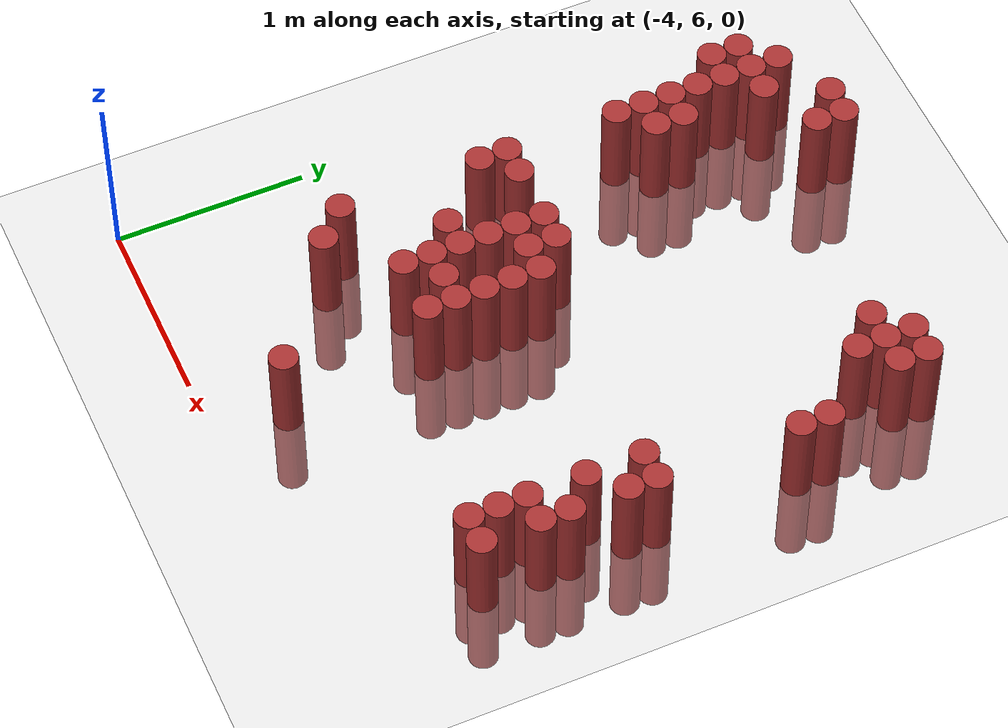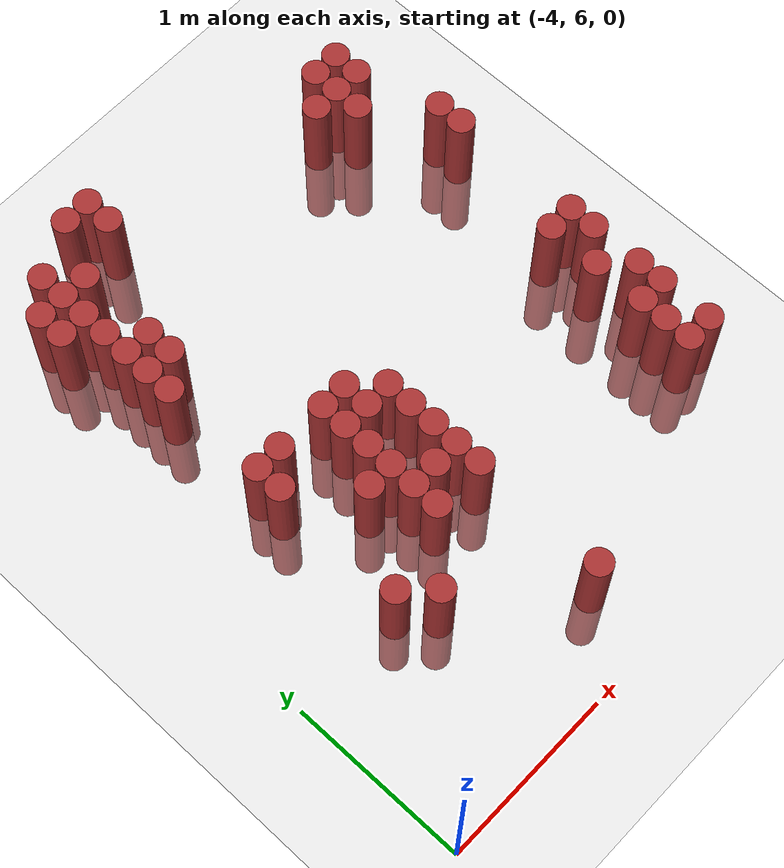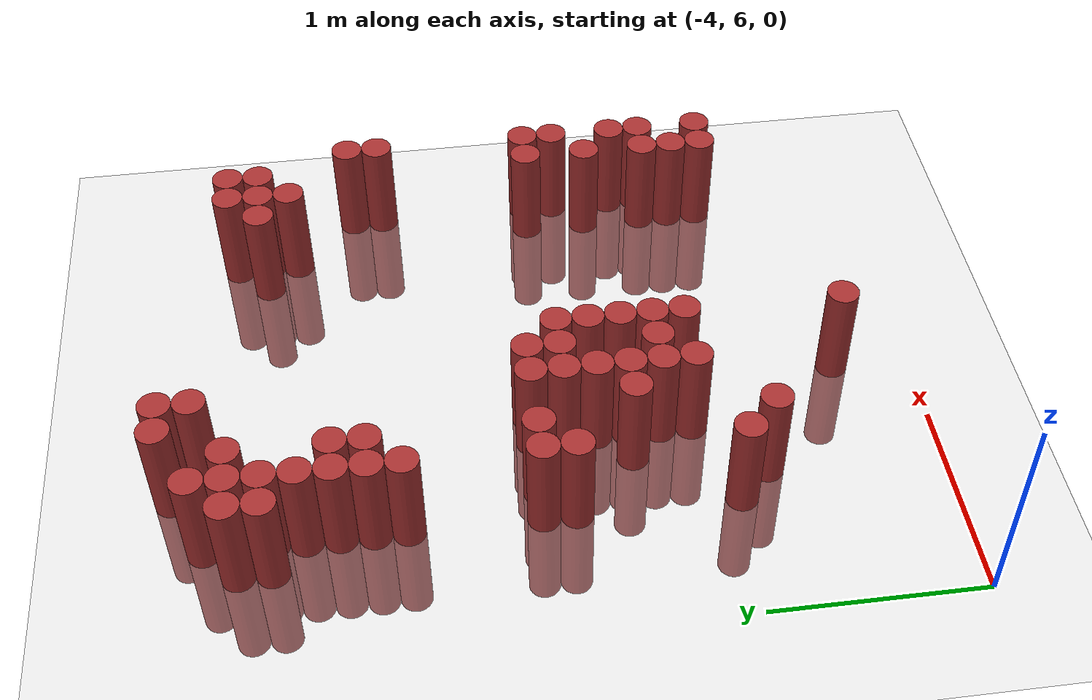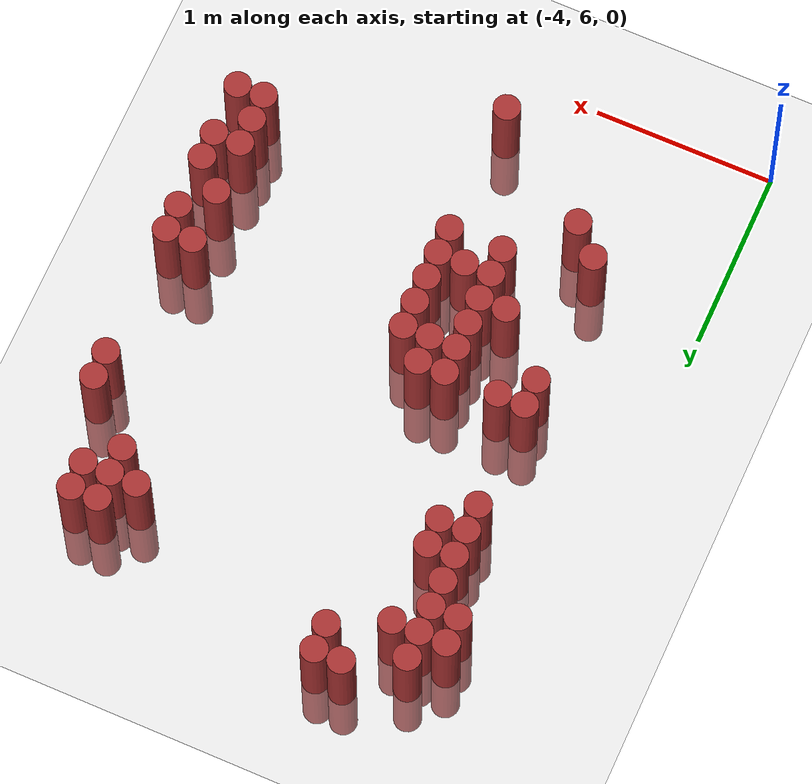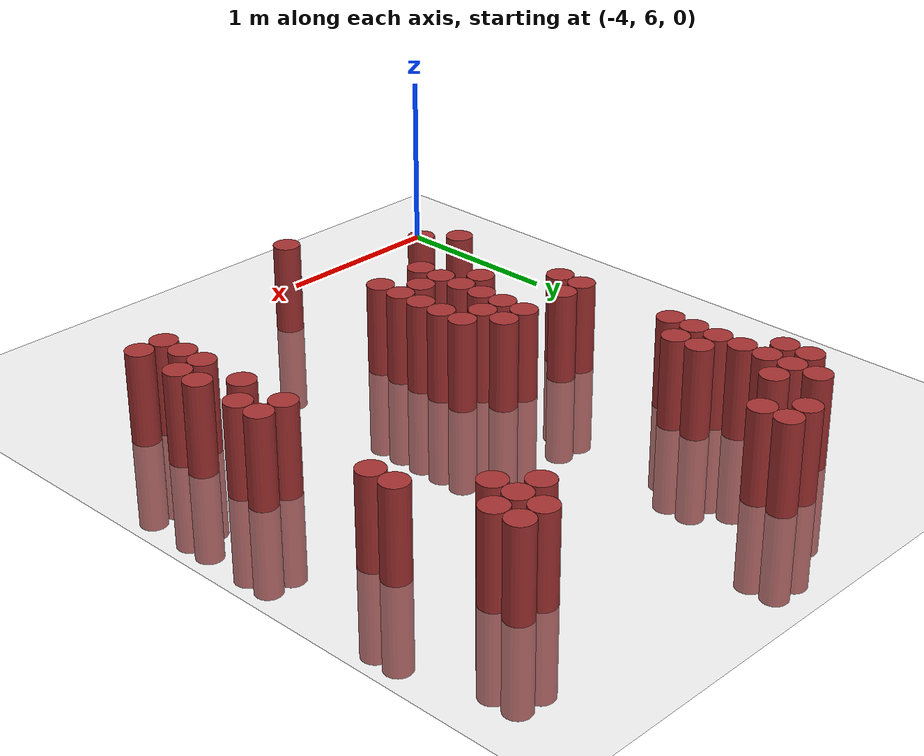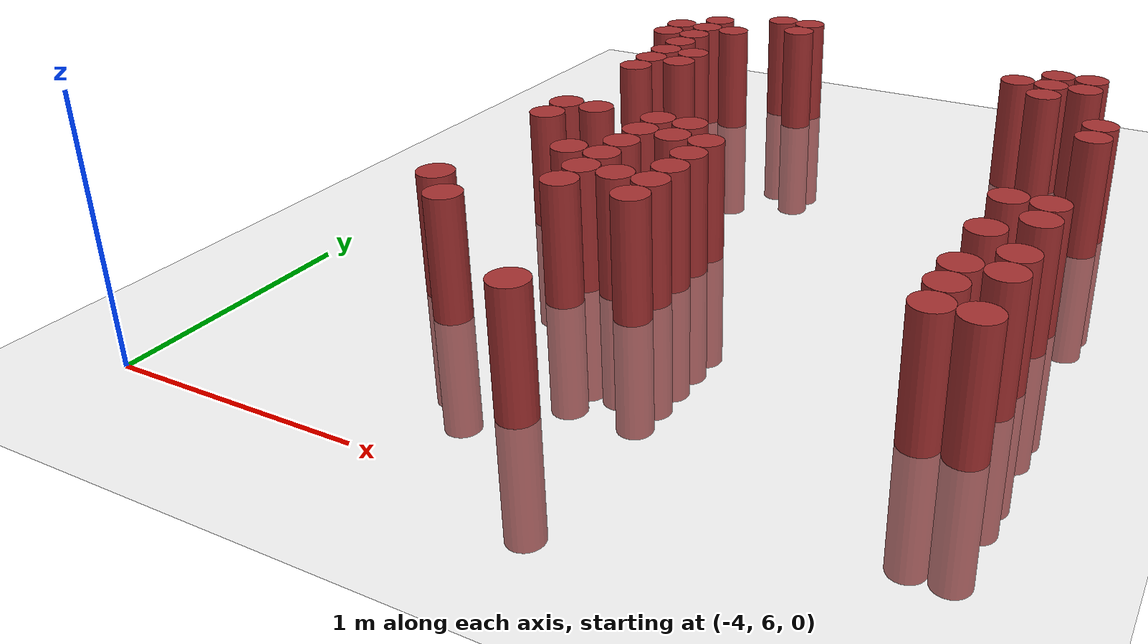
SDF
<sdf version="1.6">
 <world name="default">
  <model name="ground_plane">
   <static>1</static>
   <link name="link">
    <collision name="collision">
     <geometry><plane><normal>0 0 1</normal><size>100 100</size></plane></geometry>
     <surface><friction><ode><mu>100</mu><mu2>50</mu2></ode></friction></surface>
    </collision>
    <visual name="visual">
     <cast_shadows>0</cast_shadows>
     <geometry><plane><normal>0 0 1</normal><size>100 100</size></plane></geometry>
     <material>
      <script><uri>file://media/materials/scripts/gazebo.material</uri><name>Gazebo/Grey</name></script>
     </material>
    </visual>
   </link>
  </model>
  <model name="unit_cylinder_170">
   <static>1</static>
   <pose>-3.525000 9.075000 0.000000 0.000000 0.000000 0.000000</pose>
   <link name="link">
    <inertial>
     <mass>1</mass>
     <inertia><ixx>0.145833</ixx><ixy>0</ixy><ixz>0</ixz><iyy>0.145833</iyy><iyz>0</iyz><izz>0.125</izz></inertia>
    </inertial>
    <collision name="collision">
     <geometry><cylinder><radius>0.075000</radius><length>1</length></cylinder></geometry>
    </collision>
    <visual name="visual">
     <geometry><cylinder><radius>0.075000</radius><length>1</length></cylinder></geometry>
     <material>
      <ambient>0.648000 0.192000 0.192000 1</ambient>
      <diffuse>0.648000 0.192000 0.192000 1</diffuse>
     </material>
     <material>
      <script><name>Gazebo/Grey</name><uri>file://media/materials/scripts/gazebo.material</uri></script>
     </material>
    </visual>
   </link>
  </model>
  <model name="unit_cylinder_171">
   <static>1</static>
   <pose>-3.525000 9.225000 0.000000 0.000000 0.000000 0.000000</pose>
   <link name="link">
    <inertial>
     <mass>1</mass>
     <inertia><ixx>0.145833</ixx><ixy>0</ixy><ixz>0</ixz><iyy>0.145833</iyy><iyz>0</iyz><izz>0.125</izz></inertia>
    </inertial>
    <collision name="collision">
     <geometry><cylinder><radius>0.075000</radius><length>1</length></cylinder></geometry>
    </collision>
    <visual name="visual">
     <geometry><cylinder><radius>0.075000</radius><length>1</length></cylinder></geometry>
     <material>
      <ambient>0.648000 0.192000 0.192000 1</ambient>
      <diffuse>0.648000 0.192000 0.192000 1</diffuse>
     </material>
     <material>
      <script><name>Gazebo/Grey</name><uri>file://media/materials/scripts/gazebo.material</uri></script>
     </material>
    </visual>
   </link>
  </model>
  <model name="unit_cylinder_179">
   <static>1</static>
   <pose>-3.375000 6.975000 0.000000 0.000000 0.000000 0.000000</pose>
   <link name="link">
    <inertial>
     <mass>1</mass>
     <inertia><ixx>0.145833</ixx><ixy>0</ixy><ixz>0</ixz><iyy>0.145833</iyy><iyz>0</iyz><izz>0.125</izz></inertia>
    </inertial>
    <collision name="collision">
     <geometry><cylinder><radius>0.075000</radius><length>1</length></cylinder></geometry>
    </collision>
    <visual name="visual">
     <geometry><cylinder><radius>0.075000</radius><length>1</length></cylinder></geometry>
     <material>
      <ambient>0.648000 0.192000 0.192000 1</ambient>
      <diffuse>0.648000 0.192000 0.192000 1</diffuse>
     </material>
     <material>
      <script><name>Gazebo/Grey</name><uri>file://media/materials/scripts/gazebo.material</uri></script>
     </material>
    </visual>
   </link>
  </model>
  <model name="unit_cylinder_180">
   <static>1</static>
   <pose>-3.375000 7.725000 0.000000 0.000000 0.000000 0.000000</pose>
   <link name="link">
    <inertial>
     <mass>1</mass>
     <inertia><ixx>0.145833</ixx><ixy>0</ixy><ixz>0</ixz><iyy>0.145833</iyy><iyz>0</iyz><izz>0.125</izz></inertia>
    </inertial>
    <collision name="collision">
     <geometry><cylinder><radius>0.075000</radius><length>1</length></cylinder></geometry>
    </collision>
    <visual name="visual">
     <geometry><cylinder><radius>0.075000</radius><length>1</length></cylinder></geometry>
     <material>
      <ambient>0.648000 0.192000 0.192000 1</ambient>
      <diffuse>0.648000 0.192000 0.192000 1</diffuse>
     </material>
     <material>
      <script><name>Gazebo/Grey</name><uri>file://media/materials/scripts/gazebo.material</uri></script>
     </material>
    </visual>
   </link>
  </model>
  <model name="unit_cylinder_181">
   <static>1</static>
   <pose>-3.375000 7.875000 0.000000 0.000000 0.000000 0.000000</pose>
   <link name="link">
    <inertial>
     <mass>1</mass>
     <inertia><ixx>0.145833</ixx><ixy>0</ixy><ixz>0</ixz><iyy>0.145833</iyy><iyz>0</iyz><izz>0.125</izz></inertia>
    </inertial>
    <collision name="collision">
     <geometry><cylinder><radius>0.075000</radius><length>1</length></cylinder></geometry>
    </collision>
    <visual name="visual">
     <geometry><cylinder><radius>0.075000</radius><length>1</length></cylinder></geometry>
     <material>
      <ambient>0.648000 0.192000 0.192000 1</ambient>
      <diffuse>0.648000 0.192000 0.192000 1</diffuse>
     </material>
     <material>
      <script><name>Gazebo/Grey</name><uri>file://media/materials/scripts/gazebo.material</uri></script>
     </material>
    </visual>
   </link>
  </model>
  <model name="unit_cylinder_182">
   <static>1</static>
   <pose>-3.375000 8.475000 0.000000 0.000000 0.000000 0.000000</pose>
   <link name="link">
    <inertial>
     <mass>1</mass>
     <inertia><ixx>0.145833</ixx><ixy>0</ixy><ixz>0</ixz><iyy>0.145833</iyy><iyz>0</iyz><izz>0.125</izz></inertia>
    </inertial>
    <collision name="collision">
     <geometry><cylinder><radius>0.075000</radius><length>1</length></cylinder></geometry>
    </collision>
    <visual name="visual">
     <geometry><cylinder><radius>0.075000</radius><length>1</length></cylinder></geometry>
     <material>
      <ambient>0.648000 0.192000 0.192000 1</ambient>
      <diffuse>0.648000 0.192000 0.192000 1</diffuse>
     </material>
     <material>
      <script><name>Gazebo/Grey</name><uri>file://media/materials/scripts/gazebo.material</uri></script>
     </material>
    </visual>
   </link>
  </model>
  <model name="unit_cylinder_183">
   <static>1</static>
   <pose>-3.375000 8.625000 0.000000 0.000000 0.000000 0.000000</pose>
   <link name="link">
    <inertial>
     <mass>1</mass>
     <inertia><ixx>0.145833</ixx><ixy>0</ixy><ixz>0</ixz><iyy>0.145833</iyy><iyz>0</iyz><izz>0.125</izz></inertia>
    </inertial>
    <collision name="collision">
     <geometry><cylinder><radius>0.075000</radius><length>1</length></cylinder></geometry>
    </collision>
    <visual name="visual">
     <geometry><cylinder><radius>0.075000</radius><length>1</length></cylinder></geometry>
     <material>
      <ambient>0.648000 0.192000 0.192000 1</ambient>
      <diffuse>0.648000 0.192000 0.192000 1</diffuse>
     </material>
     <material>
      <script><name>Gazebo/Grey</name><uri>file://media/materials/scripts/gazebo.material</uri></script>
     </material>
    </visual>
   </link>
  </model>
  <model name="unit_cylinder_184">
   <static>1</static>
   <pose>-3.375000 8.775000 0.000000 0.000000 0.000000 0.000000</pose>
   <link name="link">
    <inertial>
     <mass>1</mass>
     <inertia><ixx>0.145833</ixx><ixy>0</ixy><ixz>0</ixz><iyy>0.145833</iyy><iyz>0</iyz><izz>0.125</izz></inertia>
    </inertial>
    <collision name="collision">
     <geometry><cylinder><radius>0.075000</radius><length>1</length></cylinder></geometry>
    </collision>
    <visual name="visual">
     <geometry><cylinder><radius>0.075000</radius><length>1</length></cylinder></geometry>
     <material>
      <ambient>0.648000 0.192000 0.192000 1</ambient>
      <diffuse>0.648000 0.192000 0.192000 1</diffuse>
     </material>
     <material>
      <script><name>Gazebo/Grey</name><uri>file://media/materials/scripts/gazebo.material</uri></script>
     </material>
    </visual>
   </link>
  </model>
  <model name="unit_cylinder_185">
   <static>1</static>
   <pose>-3.375000 8.925000 0.000000 0.000000 0.000000 0.000000</pose>
   <link name="link">
    <inertial>
     <mass>1</mass>
     <inertia><ixx>0.145833</ixx><ixy>0</ixy><ixz>0</ixz><iyy>0.145833</iyy><iyz>0</iyz><izz>0.125</izz></inertia>
    </inertial>
    <collision name="collision">
     <geometry><cylinder><radius>0.075000</radius><length>1</length></cylinder></geometry>
    </collision>
    <visual name="visual">
     <geometry><cylinder><radius>0.075000</radius><length>1</length></cylinder></geometry>
     <material>
      <ambient>0.648000 0.192000 0.192000 1</ambient>
      <diffuse>0.648000 0.192000 0.192000 1</diffuse>
     </material>
     <material>
      <script><name>Gazebo/Grey</name><uri>file://media/materials/scripts/gazebo.material</uri></script>
     </material>
    </visual>
   </link>
  </model>
  <model name="unit_cylinder_186">
   <static>1</static>
   <pose>-3.375000 9.075000 0.000000 0.000000 0.000000 0.000000</pose>
   <link name="link">
    <inertial>
     <mass>1</mass>
     <inertia><ixx>0.145833</ixx><ixy>0</ixy><ixz>0</ixz><iyy>0.145833</iyy><iyz>0</iyz><izz>0.125</izz></inertia>
    </inertial>
    <collision name="collision">
     <geometry><cylinder><radius>0.075000</radius><length>1</length></cylinder></geometry>
    </collision>
    <visual name="visual">
     <geometry><cylinder><radius>0.075000</radius><length>1</length></cylinder></geometry>
     <material>
      <ambient>0.648000 0.192000 0.192000 1</ambient>
      <diffuse>0.648000 0.192000 0.192000 1</diffuse>
     </material>
     <material>
      <script><name>Gazebo/Grey</name><uri>file://media/materials/scripts/gazebo.material</uri></script>
     </material>
    </visual>
   </link>
  </model>
  <model name="unit_cylinder_187">
   <static>1</static>
   <pose>-3.375000 9.225000 0.000000 0.000000 0.000000 0.000000</pose>
   <link name="link">
    <inertial>
     <mass>1</mass>
     <inertia><ixx>0.145833</ixx><ixy>0</ixy><ixz>0</ixz><iyy>0.145833</iyy><iyz>0</iyz><izz>0.125</izz></inertia>
    </inertial>
    <collision name="collision">
     <geometry><cylinder><radius>0.075000</radius><length>1</length></cylinder></geometry>
    </collision>
    <visual name="visual">
     <geometry><cylinder><radius>0.075000</radius><length>1</length></cylinder></geometry>
     <material>
      <ambient>0.648000 0.192000 0.192000 1</ambient>
      <diffuse>0.648000 0.192000 0.192000 1</diffuse>
     </material>
     <material>
      <script><name>Gazebo/Grey</name><uri>file://media/materials/scripts/gazebo.material</uri></script>
     </material>
    </visual>
   </link>
  </model>
  <model name="unit_cylinder_188">
   <static>1</static>
   <pose>-3.375000 9.375000 0.000000 0.000000 0.000000 0.000000</pose>
   <link name="link">
    <inertial>
     <mass>1</mass>
     <inertia><ixx>0.145833</ixx><ixy>0</ixy><ixz>0</ixz><iyy>0.145833</iyy><iyz>0</iyz><izz>0.125</izz></inertia>
    </inertial>
    <collision name="collision">
     <geometry><cylinder><radius>0.075000</radius><length>1</length></cylinder></geometry>
    </collision>
    <visual name="visual">
     <geometry><cylinder><radius>0.075000</radius><length>1</length></cylinder></geometry>
     <material>
      <ambient>0.648000 0.192000 0.192000 1</ambient>
      <diffuse>0.648000 0.192000 0.192000 1</diffuse>
     </material>
     <material>
      <script><name>Gazebo/Grey</name><uri>file://media/materials/scripts/gazebo.material</uri></script>
     </material>
    </visual>
   </link>
  </model>
  <model name="unit_cylinder_193">
   <static>1</static>
   <pose>-3.225000 6.825000 0.000000 0.000000 0.000000 0.000000</pose>
   <link name="link">
    <inertial>
     <mass>1</mass>
     <inertia><ixx>0.145833</ixx><ixy>0</ixy><ixz>0</ixz><iyy>0.145833</iyy><iyz>0</iyz><izz>0.125</izz></inertia>
    </inertial>
    <collision name="collision">
     <geometry><cylinder><radius>0.075000</radius><length>1</length></cylinder></geometry>
    </collision>
    <visual name="visual">
     <geometry><cylinder><radius>0.075000</radius><length>1</length></cylinder></geometry>
     <material>
      <ambient>0.648000 0.192000 0.192000 1</ambient>
      <diffuse>0.648000 0.192000 0.192000 1</diffuse>
     </material>
     <material>
      <script><name>Gazebo/Grey</name><uri>file://media/materials/scripts/gazebo.material</uri></script>
     </material>
    </visual>
   </link>
  </model>
  <model name="unit_cylinder_194">
   <static>1</static>
   <pose>-3.225000 7.875000 0.000000 0.000000 0.000000 0.000000</pose>
   <link name="link">
    <inertial>
     <mass>1</mass>
     <inertia><ixx>0.145833</ixx><ixy>0</ixy><ixz>0</ixz><iyy>0.145833</iyy><iyz>0</iyz><izz>0.125</izz></inertia>
    </inertial>
    <collision name="collision">
     <geometry><cylinder><radius>0.075000</radius><length>1</length></cylinder></geometry>
    </collision>
    <visual name="visual">
     <geometry><cylinder><radius>0.075000</radius><length>1</length></cylinder></geometry>
     <material>
      <ambient>0.648000 0.192000 0.192000 1</ambient>
      <diffuse>0.648000 0.192000 0.192000 1</diffuse>
     </material>
     <material>
      <script><name>Gazebo/Grey</name><uri>file://media/materials/scripts/gazebo.material</uri></script>
     </material>
    </visual>
   </link>
  </model>
  <model name="unit_cylinder_195">
   <static>1</static>
   <pose>-3.225000 8.625000 0.000000 0.000000 0.000000 0.000000</pose>
   <link name="link">
    <inertial>
     <mass>1</mass>
     <inertia><ixx>0.145833</ixx><ixy>0</ixy><ixz>0</ixz><iyy>0.145833</iyy><iyz>0</iyz><izz>0.125</izz></inertia>
    </inertial>
    <collision name="collision">
     <geometry><cylinder><radius>0.075000</radius><length>1</length></cylinder></geometry>
    </collision>
    <visual name="visual">
     <geometry><cylinder><radius>0.075000</radius><length>1</length></cylinder></geometry>
     <material>
      <ambient>0.648000 0.192000 0.192000 1</ambient>
      <diffuse>0.648000 0.192000 0.192000 1</diffuse>
     </material>
     <material>
      <script><name>Gazebo/Grey</name><uri>file://media/materials/scripts/gazebo.material</uri></script>
     </material>
    </visual>
   </link>
  </model>
  <model name="unit_cylinder_196">
   <static>1</static>
   <pose>-3.225000 8.775000 0.000000 0.000000 0.000000 0.000000</pose>
   <link name="link">
    <inertial>
     <mass>1</mass>
     <inertia><ixx>0.145833</ixx><ixy>0</ixy><ixz>0</ixz><iyy>0.145833</iyy><iyz>0</iyz><izz>0.125</izz></inertia>
    </inertial>
    <collision name="collision">
     <geometry><cylinder><radius>0.075000</radius><length>1</length></cylinder></geometry>
    </collision>
    <visual name="visual">
     <geometry><cylinder><radius>0.075000</radius><length>1</length></cylinder></geometry>
     <material>
      <ambient>0.648000 0.192000 0.192000 1</ambient>
      <diffuse>0.648000 0.192000 0.192000 1</diffuse>
     </material>
     <material>
      <script><name>Gazebo/Grey</name><uri>file://media/materials/scripts/gazebo.material</uri></script>
     </material>
    </visual>
   </link>
  </model>
  <model name="unit_cylinder_197">
   <static>1</static>
   <pose>-3.225000 9.225000 0.000000 0.000000 0.000000 0.000000</pose>
   <link name="link">
    <inertial>
     <mass>1</mass>
     <inertia><ixx>0.145833</ixx><ixy>0</ixy><ixz>0</ixz><iyy>0.145833</iyy><iyz>0</iyz><izz>0.125</izz></inertia>
    </inertial>
    <collision name="collision">
     <geometry><cylinder><radius>0.075000</radius><length>1</length></cylinder></geometry>
    </collision>
    <visual name="visual">
     <geometry><cylinder><radius>0.075000</radius><length>1</length></cylinder></geometry>
     <material>
      <ambient>0.648000 0.192000 0.192000 1</ambient>
      <diffuse>0.648000 0.192000 0.192000 1</diffuse>
     </material>
     <material>
      <script><name>Gazebo/Grey</name><uri>file://media/materials/scripts/gazebo.material</uri></script>
     </material>
    </visual>
   </link>
  </model>
  <model name="unit_cylinder_203">
   <static>1</static>
   <pose>-3.075000 7.425000 0.000000 0.000000 0.000000 0.000000</pose>
   <link name="link">
    <inertial>
     <mass>1</mass>
     <inertia><ixx>0.145833</ixx><ixy>0</ixy><ixz>0</ixz><iyy>0.145833</iyy><iyz>0</iyz><izz>0.125</izz></inertia>
    </inertial>
    <collision name="collision">
     <geometry><cylinder><radius>0.075000</radius><length>1</length></cylinder></geometry>
    </collision>
    <visual name="visual">
     <geometry><cylinder><radius>0.075000</radius><length>1</length></cylinder></geometry>
     <material>
      <ambient>0.648000 0.192000 0.192000 1</ambient>
      <diffuse>0.648000 0.192000 0.192000 1</diffuse>
     </material>
     <material>
      <script><name>Gazebo/Grey</name><uri>file://media/materials/scripts/gazebo.material</uri></script>
     </material>
    </visual>
   </link>
  </model>
  <model name="unit_cylinder_204">
   <static>1</static>
   <pose>-3.075000 9.525000 0.000000 0.000000 0.000000 0.000000</pose>
   <link name="link">
    <inertial>
     <mass>1</mass>
     <inertia><ixx>0.145833</ixx><ixy>0</ixy><ixz>0</ixz><iyy>0.145833</iyy><iyz>0</iyz><izz>0.125</izz></inertia>
    </inertial>
    <collision name="collision">
     <geometry><cylinder><radius>0.075000</radius><length>1</length></cylinder></geometry>
    </collision>
    <visual name="visual">
     <geometry><cylinder><radius>0.075000</radius><length>1</length></cylinder></geometry>
     <material>
      <ambient>0.648000 0.192000 0.192000 1</ambient>
      <diffuse>0.648000 0.192000 0.192000 1</diffuse>
     </material>
     <material>
      <script><name>Gazebo/Grey</name><uri>file://media/materials/scripts/gazebo.material</uri></script>
     </material>
    </visual>
   </link>
  </model>
  <model name="unit_cylinder_207">
   <static>1</static>
   <pose>-2.925000 7.125000 0.000000 0.000000 0.000000 0.000000</pose>
   <link name="link">
    <inertial>
     <mass>1</mass>
     <inertia><ixx>0.145833</ixx><ixy>0</ixy><ixz>0</ixz><iyy>0.145833</iyy><iyz>0</iyz><izz>0.125</izz></inertia>
    </inertial>
    <collision name="collision">
     <geometry><cylinder><radius>0.075000</radius><length>1</length></cylinder></geometry>
    </collision>
    <visual name="visual">
     <geometry><cylinder><radius>0.075000</radius><length>1</length></cylinder></geometry>
     <material>
      <ambient>0.648000 0.192000 0.192000 1</ambient>
      <diffuse>0.648000 0.192000 0.192000 1</diffuse>
     </material>
     <material>
      <script><name>Gazebo/Grey</name><uri>file://media/materials/scripts/gazebo.material</uri></script>
     </material>
    </visual>
   </link>
  </model>
  <model name="unit_cylinder_208">
   <static>1</static>
   <pose>-2.925000 7.275000 0.000000 0.000000 0.000000 0.000000</pose>
   <link name="link">
    <inertial>
     <mass>1</mass>
     <inertia><ixx>0.145833</ixx><ixy>0</ixy><ixz>0</ixz><iyy>0.145833</iyy><iyz>0</iyz><izz>0.125</izz></inertia>
    </inertial>
    <collision name="collision">
     <geometry><cylinder><radius>0.075000</radius><length>1</length></cylinder></geometry>
    </collision>
    <visual name="visual">
     <geometry><cylinder><radius>0.075000</radius><length>1</length></cylinder></geometry>
     <material>
      <ambient>0.648000 0.192000 0.192000 1</ambient>
      <diffuse>0.648000 0.192000 0.192000 1</diffuse>
     </material>
     <material>
      <script><name>Gazebo/Grey</name><uri>file://media/materials/scripts/gazebo.material</uri></script>
     </material>
    </visual>
   </link>
  </model>
  <model name="unit_cylinder_209">
   <static>1</static>
   <pose>-2.925000 7.425000 0.000000 0.000000 0.000000 0.000000</pose>
   <link name="link">
    <inertial>
     <mass>1</mass>
     <inertia><ixx>0.145833</ixx><ixy>0</ixy><ixz>0</ixz><iyy>0.145833</iyy><iyz>0</iyz><izz>0.125</izz></inertia>
    </inertial>
    <collision name="collision">
     <geometry><cylinder><radius>0.075000</radius><length>1</length></cylinder></geometry>
    </collision>
    <visual name="visual">
     <geometry><cylinder><radius>0.075000</radius><length>1</length></cylinder></geometry>
     <material>
      <ambient>0.648000 0.192000 0.192000 1</ambient>
      <diffuse>0.648000 0.192000 0.192000 1</diffuse>
     </material>
     <material>
      <script><name>Gazebo/Grey</name><uri>file://media/materials/scripts/gazebo.material</uri></script>
     </material>
    </visual>
   </link>
  </model>
  <model name="unit_cylinder_210">
   <static>1</static>
   <pose>-2.925000 7.575000 0.000000 0.000000 0.000000 0.000000</pose>
   <link name="link">
    <inertial>
     <mass>1</mass>
     <inertia><ixx>0.145833</ixx><ixy>0</ixy><ixz>0</ixz><iyy>0.145833</iyy><iyz>0</iyz><izz>0.125</izz></inertia>
    </inertial>
    <collision name="collision">
     <geometry><cylinder><radius>0.075000</radius><length>1</length></cylinder></geometry>
    </collision>
    <visual name="visual">
     <geometry><cylinder><radius>0.075000</radius><length>1</length></cylinder></geometry>
     <material>
      <ambient>0.648000 0.192000 0.192000 1</ambient>
      <diffuse>0.648000 0.192000 0.192000 1</diffuse>
     </material>
     <material>
      <script><name>Gazebo/Grey</name><uri>file://media/materials/scripts/gazebo.material</uri></script>
     </material>
    </visual>
   </link>
  </model>
  <model name="unit_cylinder_211">
   <static>1</static>
   <pose>-2.925000 7.725000 0.000000 0.000000 0.000000 0.000000</pose>
   <link name="link">
    <inertial>
     <mass>1</mass>
     <inertia><ixx>0.145833</ixx><ixy>0</ixy><ixz>0</ixz><iyy>0.145833</iyy><iyz>0</iyz><izz>0.125</izz></inertia>
    </inertial>
    <collision name="collision">
     <geometry><cylinder><radius>0.075000</radius><length>1</length></cylinder></geometry>
    </collision>
    <visual name="visual">
     <geometry><cylinder><radius>0.075000</radius><length>1</length></cylinder></geometry>
     <material>
      <ambient>0.648000 0.192000 0.192000 1</ambient>
      <diffuse>0.648000 0.192000 0.192000 1</diffuse>
     </material>
     <material>
      <script><name>Gazebo/Grey</name><uri>file://media/materials/scripts/gazebo.material</uri></script>
     </material>
    </visual>
   </link>
  </model>
  <model name="unit_cylinder_212">
   <static>1</static>
   <pose>-2.925000 7.875000 0.000000 0.000000 0.000000 0.000000</pose>
   <link name="link">
    <inertial>
     <mass>1</mass>
     <inertia><ixx>0.145833</ixx><ixy>0</ixy><ixz>0</ixz><iyy>0.145833</iyy><iyz>0</iyz><izz>0.125</izz></inertia>
    </inertial>
    <collision name="collision">
     <geometry><cylinder><radius>0.075000</radius><length>1</length></cylinder></geometry>
    </collision>
    <visual name="visual">
     <geometry><cylinder><radius>0.075000</radius><length>1</length></cylinder></geometry>
     <material>
      <ambient>0.648000 0.192000 0.192000 1</ambient>
      <diffuse>0.648000 0.192000 0.192000 1</diffuse>
     </material>
     <material>
      <script><name>Gazebo/Grey</name><uri>file://media/materials/scripts/gazebo.material</uri></script>
     </material>
    </visual>
   </link>
  </model>
  <model name="unit_cylinder_213">
   <static>1</static>
   <pose>-2.925000 9.375000 0.000000 0.000000 0.000000 0.000000</pose>
   <link name="link">
    <inertial>
     <mass>1</mass>
     <inertia><ixx>0.145833</ixx><ixy>0</ixy><ixz>0</ixz><iyy>0.145833</iyy><iyz>0</iyz><izz>0.125</izz></inertia>
    </inertial>
    <collision name="collision">
     <geometry><cylinder><radius>0.075000</radius><length>1</length></cylinder></geometry>
    </collision>
    <visual name="visual">
     <geometry><cylinder><radius>0.075000</radius><length>1</length></cylinder></geometry>
     <material>
      <ambient>0.648000 0.192000 0.192000 1</ambient>
      <diffuse>0.648000 0.192000 0.192000 1</diffuse>
     </material>
     <material>
      <script><name>Gazebo/Grey</name><uri>file://media/materials/scripts/gazebo.material</uri></script>
     </material>
    </visual>
   </link>
  </model>
  <model name="unit_cylinder_214">
   <static>1</static>
   <pose>-2.925000 9.525000 0.000000 0.000000 0.000000 0.000000</pose>
   <link name="link">
    <inertial>
     <mass>1</mass>
     <inertia><ixx>0.145833</ixx><ixy>0</ixy><ixz>0</ixz><iyy>0.145833</iyy><iyz>0</iyz><izz>0.125</izz></inertia>
    </inertial>
    <collision name="collision">
     <geometry><cylinder><radius>0.075000</radius><length>1</length></cylinder></geometry>
    </collision>
    <visual name="visual">
     <geometry><cylinder><radius>0.075000</radius><length>1</length></cylinder></geometry>
     <material>
      <ambient>0.648000 0.192000 0.192000 1</ambient>
      <diffuse>0.648000 0.192000 0.192000 1</diffuse>
     </material>
     <material>
      <script><name>Gazebo/Grey</name><uri>file://media/materials/scripts/gazebo.material</uri></script>
     </material>
    </visual>
   </link>
  </model>
  <model name="unit_cylinder_217">
   <static>1</static>
   <pose>-2.775000 7.275000 0.000000 0.000000 0.000000 0.000000</pose>
   <link name="link">
    <inertial>
     <mass>1</mass>
     <inertia><ixx>0.145833</ixx><ixy>0</ixy><ixz>0</ixz><iyy>0.145833</iyy><iyz>0</iyz><izz>0.125</izz></inertia>
    </inertial>
    <collision name="collision">
     <geometry><cylinder><radius>0.075000</radius><length>1</length></cylinder></geometry>
    </collision>
    <visual name="visual">
     <geometry><cylinder><radius>0.075000</radius><length>1</length></cylinder></geometry>
     <material>
      <ambient>0.648000 0.192000 0.192000 1</ambient>
      <diffuse>0.648000 0.192000 0.192000 1</diffuse>
     </material>
     <material>
      <script><name>Gazebo/Grey</name><uri>file://media/materials/scripts/gazebo.material</uri></script>
     </material>
    </visual>
   </link>
  </model>
  <model name="unit_cylinder_218">
   <static>1</static>
   <pose>-2.775000 7.725000 0.000000 0.000000 0.000000 0.000000</pose>
   <link name="link">
    <inertial>
     <mass>1</mass>
     <inertia><ixx>0.145833</ixx><ixy>0</ixy><ixz>0</ixz><iyy>0.145833</iyy><iyz>0</iyz><izz>0.125</izz></inertia>
    </inertial>
    <collision name="collision">
     <geometry><cylinder><radius>0.075000</radius><length>1</length></cylinder></geometry>
    </collision>
    <visual name="visual">
     <geometry><cylinder><radius>0.075000</radius><length>1</length></cylinder></geometry>
     <material>
      <ambient>0.648000 0.192000 0.192000 1</ambient>
      <diffuse>0.648000 0.192000 0.192000 1</diffuse>
     </material>
     <material>
      <script><name>Gazebo/Grey</name><uri>file://media/materials/scripts/gazebo.material</uri></script>
     </material>
    </visual>
   </link>
  </model>
  <model name="unit_cylinder_219">
   <static>1</static>
   <pose>-2.775000 7.875000 0.000000 0.000000 0.000000 0.000000</pose>
   <link name="link">
    <inertial>
     <mass>1</mass>
     <inertia><ixx>0.145833</ixx><ixy>0</ixy><ixz>0</ixz><iyy>0.145833</iyy><iyz>0</iyz><izz>0.125</izz></inertia>
    </inertial>
    <collision name="collision">
     <geometry><cylinder><radius>0.075000</radius><length>1</length></cylinder></geometry>
    </collision>
    <visual name="visual">
     <geometry><cylinder><radius>0.075000</radius><length>1</length></cylinder></geometry>
     <material>
      <ambient>0.648000 0.192000 0.192000 1</ambient>
      <diffuse>0.648000 0.192000 0.192000 1</diffuse>
     </material>
     <material>
      <script><name>Gazebo/Grey</name><uri>file://media/materials/scripts/gazebo.material</uri></script>
     </material>
    </visual>
   </link>
  </model>
  <model name="unit_cylinder_223">
   <static>1</static>
   <pose>-2.625000 6.375000 0.000000 0.000000 0.000000 0.000000</pose>
   <link name="link">
    <inertial>
     <mass>1</mass>
     <inertia><ixx>0.145833</ixx><ixy>0</ixy><ixz>0</ixz><iyy>0.145833</iyy><iyz>0</iyz><izz>0.125</izz></inertia>
    </inertial>
    <collision name="collision">
     <geometry><cylinder><radius>0.075000</radius><length>1</length></cylinder></geometry>
    </collision>
    <visual name="visual">
     <geometry><cylinder><radius>0.075000</radius><length>1</length></cylinder></geometry>
     <material>
      <ambient>0.648000 0.192000 0.192000 1</ambient>
      <diffuse>0.648000 0.192000 0.192000 1</diffuse>
     </material>
     <material>
      <script><name>Gazebo/Grey</name><uri>file://media/materials/scripts/gazebo.material</uri></script>
     </material>
    </visual>
   </link>
  </model>
  <model name="unit_cylinder_224">
   <static>1</static>
   <pose>-2.625000 7.125000 0.000000 0.000000 0.000000 0.000000</pose>
   <link name="link">
    <inertial>
     <mass>1</mass>
     <inertia><ixx>0.145833</ixx><ixy>0</ixy><ixz>0</ixz><iyy>0.145833</iyy><iyz>0</iyz><izz>0.125</izz></inertia>
    </inertial>
    <collision name="collision">
     <geometry><cylinder><radius>0.075000</radius><length>1</length></cylinder></geometry>
    </collision>
    <visual name="visual">
     <geometry><cylinder><radius>0.075000</radius><length>1</length></cylinder></geometry>
     <material>
      <ambient>0.648000 0.192000 0.192000 1</ambient>
      <diffuse>0.648000 0.192000 0.192000 1</diffuse>
     </material>
     <material>
      <script><name>Gazebo/Grey</name><uri>file://media/materials/scripts/gazebo.material</uri></script>
     </material>
    </visual>
   </link>
  </model>
  <model name="unit_cylinder_225">
   <static>1</static>
   <pose>-2.625000 7.275000 0.000000 0.000000 0.000000 0.000000</pose>
   <link name="link">
    <inertial>
     <mass>1</mass>
     <inertia><ixx>0.145833</ixx><ixy>0</ixy><ixz>0</ixz><iyy>0.145833</iyy><iyz>0</iyz><izz>0.125</izz></inertia>
    </inertial>
    <collision name="collision">
     <geometry><cylinder><radius>0.075000</radius><length>1</length></cylinder></geometry>
    </collision>
    <visual name="visual">
     <geometry><cylinder><radius>0.075000</radius><length>1</length></cylinder></geometry>
     <material>
      <ambient>0.648000 0.192000 0.192000 1</ambient>
      <diffuse>0.648000 0.192000 0.192000 1</diffuse>
     </material>
     <material>
      <script><name>Gazebo/Grey</name><uri>file://media/materials/scripts/gazebo.material</uri></script>
     </material>
    </visual>
   </link>
  </model>
  <model name="unit_cylinder_226">
   <static>1</static>
   <pose>-2.625000 7.425000 0.000000 0.000000 0.000000 0.000000</pose>
   <link name="link">
    <inertial>
     <mass>1</mass>
     <inertia><ixx>0.145833</ixx><ixy>0</ixy><ixz>0</ixz><iyy>0.145833</iyy><iyz>0</iyz><izz>0.125</izz></inertia>
    </inertial>
    <collision name="collision">
     <geometry><cylinder><radius>0.075000</radius><length>1</length></cylinder></geometry>
    </collision>
    <visual name="visual">
     <geometry><cylinder><radius>0.075000</radius><length>1</length></cylinder></geometry>
     <material>
      <ambient>0.648000 0.192000 0.192000 1</ambient>
      <diffuse>0.648000 0.192000 0.192000 1</diffuse>
     </material>
     <material>
      <script><name>Gazebo/Grey</name><uri>file://media/materials/scripts/gazebo.material</uri></script>
     </material>
    </visual>
   </link>
  </model>
  <model name="unit_cylinder_227">
   <static>1</static>
   <pose>-2.625000 7.575000 0.000000 0.000000 0.000000 0.000000</pose>
   <link name="link">
    <inertial>
     <mass>1</mass>
     <inertia><ixx>0.145833</ixx><ixy>0</ixy><ixz>0</ixz><iyy>0.145833</iyy><iyz>0</iyz><izz>0.125</izz></inertia>
    </inertial>
    <collision name="collision">
     <geometry><cylinder><radius>0.075000</radius><length>1</length></cylinder></geometry>
    </collision>
    <visual name="visual">
     <geometry><cylinder><radius>0.075000</radius><length>1</length></cylinder></geometry>
     <material>
      <ambient>0.648000 0.192000 0.192000 1</ambient>
      <diffuse>0.648000 0.192000 0.192000 1</diffuse>
     </material>
     <material>
      <script><name>Gazebo/Grey</name><uri>file://media/materials/scripts/gazebo.material</uri></script>
     </material>
    </visual>
   </link>
  </model>
  <model name="unit_cylinder_228">
   <static>1</static>
   <pose>-2.625000 7.725000 0.000000 0.000000 0.000000 0.000000</pose>
   <link name="link">
    <inertial>
     <mass>1</mass>
     <inertia><ixx>0.145833</ixx><ixy>0</ixy><ixz>0</ixz><iyy>0.145833</iyy><iyz>0</iyz><izz>0.125</izz></inertia>
    </inertial>
    <collision name="collision">
     <geometry><cylinder><radius>0.075000</radius><length>1</length></cylinder></geometry>
    </collision>
    <visual name="visual">
     <geometry><cylinder><radius>0.075000</radius><length>1</length></cylinder></geometry>
     <material>
      <ambient>0.648000 0.192000 0.192000 1</ambient>
      <diffuse>0.648000 0.192000 0.192000 1</diffuse>
     </material>
     <material>
      <script><name>Gazebo/Grey</name><uri>file://media/materials/scripts/gazebo.material</uri></script>
     </material>
    </visual>
   </link>
  </model>
  <model name="unit_cylinder_233">
   <static>1</static>
   <pose>-1.725000 9.075000 0.000000 0.000000 0.000000 0.000000</pose>
   <link name="link">
    <inertial>
     <mass>1</mass>
     <inertia><ixx>0.145833</ixx><ixy>0</ixy><ixz>0</ixz><iyy>0.145833</iyy><iyz>0</iyz><izz>0.125</izz></inertia>
    </inertial>
    <collision name="collision">
     <geometry><cylinder><radius>0.075000</radius><length>1</length></cylinder></geometry>
    </collision>
    <visual name="visual">
     <geometry><cylinder><radius>0.075000</radius><length>1</length></cylinder></geometry>
     <material>
      <ambient>0.648000 0.192000 0.192000 1</ambient>
      <diffuse>0.648000 0.192000 0.192000 1</diffuse>
     </material>
     <material>
      <script><name>Gazebo/Grey</name><uri>file://media/materials/scripts/gazebo.material</uri></script>
     </material>
    </visual>
   </link>
  </model>
  <model name="unit_cylinder_234">
   <static>1</static>
   <pose>-1.575000 8.925000 0.000000 0.000000 0.000000 0.000000</pose>
   <link name="link">
    <inertial>
     <mass>1</mass>
     <inertia><ixx>0.145833</ixx><ixy>0</ixy><ixz>0</ixz><iyy>0.145833</iyy><iyz>0</iyz><izz>0.125</izz></inertia>
    </inertial>
    <collision name="collision">
     <geometry><cylinder><radius>0.075000</radius><length>1</length></cylinder></geometry>
    </collision>
    <visual name="visual">
     <geometry><cylinder><radius>0.075000</radius><length>1</length></cylinder></geometry>
     <material>
      <ambient>0.648000 0.192000 0.192000 1</ambient>
      <diffuse>0.648000 0.192000 0.192000 1</diffuse>
     </material>
     <material>
      <script><name>Gazebo/Grey</name><uri>file://media/materials/scripts/gazebo.material</uri></script>
     </material>
    </visual>
   </link>
  </model>
  <model name="unit_cylinder_235">
   <static>1</static>
   <pose>-1.575000 9.075000 0.000000 0.000000 0.000000 0.000000</pose>
   <link name="link">
    <inertial>
     <mass>1</mass>
     <inertia><ixx>0.145833</ixx><ixy>0</ixy><ixz>0</ixz><iyy>0.145833</iyy><iyz>0</iyz><izz>0.125</izz></inertia>
    </inertial>
    <collision name="collision">
     <geometry><cylinder><radius>0.075000</radius><length>1</length></cylinder></geometry>
    </collision>
    <visual name="visual">
     <geometry><cylinder><radius>0.075000</radius><length>1</length></cylinder></geometry>
     <material>
      <ambient>0.648000 0.192000 0.192000 1</ambient>
      <diffuse>0.648000 0.192000 0.192000 1</diffuse>
     </material>
     <material>
      <script><name>Gazebo/Grey</name><uri>file://media/materials/scripts/gazebo.material</uri></script>
     </material>
    </visual>
   </link>
  </model>
  <model name="unit_cylinder_236">
   <static>1</static>
   <pose>-1.575000 9.225000 0.000000 0.000000 0.000000 0.000000</pose>
   <link name="link">
    <inertial>
     <mass>1</mass>
     <inertia><ixx>0.145833</ixx><ixy>0</ixy><ixz>0</ixz><iyy>0.145833</iyy><iyz>0</iyz><izz>0.125</izz></inertia>
    </inertial>
    <collision name="collision">
     <geometry><cylinder><radius>0.075000</radius><length>1</length></cylinder></geometry>
    </collision>
    <visual name="visual">
     <geometry><cylinder><radius>0.075000</radius><length>1</length></cylinder></geometry>
     <material>
      <ambient>0.648000 0.192000 0.192000 1</ambient>
      <diffuse>0.648000 0.192000 0.192000 1</diffuse>
     </material>
     <material>
      <script><name>Gazebo/Grey</name><uri>file://media/materials/scripts/gazebo.material</uri></script>
     </material>
    </visual>
   </link>
  </model>
  <model name="unit_cylinder_237">
   <static>1</static>
   <pose>-1.425000 6.825000 0.000000 0.000000 0.000000 0.000000</pose>
   <link name="link">
    <inertial>
     <mass>1</mass>
     <inertia><ixx>0.145833</ixx><ixy>0</ixy><ixz>0</ixz><iyy>0.145833</iyy><iyz>0</iyz><izz>0.125</izz></inertia>
    </inertial>
    <collision name="collision">
     <geometry><cylinder><radius>0.075000</radius><length>1</length></cylinder></geometry>
    </collision>
    <visual name="visual">
     <geometry><cylinder><radius>0.075000</radius><length>1</length></cylinder></geometry>
     <material>
      <ambient>0.648000 0.192000 0.192000 1</ambient>
      <diffuse>0.648000 0.192000 0.192000 1</diffuse>
     </material>
     <material>
      <script><name>Gazebo/Grey</name><uri>file://media/materials/scripts/gazebo.material</uri></script>
     </material>
    </visual>
   </link>
  </model>
  <model name="unit_cylinder_238">
   <static>1</static>
   <pose>-1.425000 6.975000 0.000000 0.000000 0.000000 0.000000</pose>
   <link name="link">
    <inertial>
     <mass>1</mass>
     <inertia><ixx>0.145833</ixx><ixy>0</ixy><ixz>0</ixz><iyy>0.145833</iyy><iyz>0</iyz><izz>0.125</izz></inertia>
    </inertial>
    <collision name="collision">
     <geometry><cylinder><radius>0.075000</radius><length>1</length></cylinder></geometry>
    </collision>
    <visual name="visual">
     <geometry><cylinder><radius>0.075000</radius><length>1</length></cylinder></geometry>
     <material>
      <ambient>0.648000 0.192000 0.192000 1</ambient>
      <diffuse>0.648000 0.192000 0.192000 1</diffuse>
     </material>
     <material>
      <script><name>Gazebo/Grey</name><uri>file://media/materials/scripts/gazebo.material</uri></script>
     </material>
    </visual>
   </link>
  </model>
  <model name="unit_cylinder_239">
   <static>1</static>
   <pose>-1.425000 7.125000 0.000000 0.000000 0.000000 0.000000</pose>
   <link name="link">
    <inertial>
     <mass>1</mass>
     <inertia><ixx>0.145833</ixx><ixy>0</ixy><ixz>0</ixz><iyy>0.145833</iyy><iyz>0</iyz><izz>0.125</izz></inertia>
    </inertial>
    <collision name="collision">
     <geometry><cylinder><radius>0.075000</radius><length>1</length></cylinder></geometry>
    </collision>
    <visual name="visual">
     <geometry><cylinder><radius>0.075000</radius><length>1</length></cylinder></geometry>
     <material>
      <ambient>0.648000 0.192000 0.192000 1</ambient>
      <diffuse>0.648000 0.192000 0.192000 1</diffuse>
     </material>
     <material>
      <script><name>Gazebo/Grey</name><uri>file://media/materials/scripts/gazebo.material</uri></script>
     </material>
    </visual>
   </link>
  </model>
  <model name="unit_cylinder_240">
   <static>1</static>
   <pose>-1.425000 7.425000 0.000000 0.000000 0.000000 0.000000</pose>
   <link name="link">
    <inertial>
     <mass>1</mass>
     <inertia><ixx>0.145833</ixx><ixy>0</ixy><ixz>0</ixz><iyy>0.145833</iyy><iyz>0</iyz><izz>0.125</izz></inertia>
    </inertial>
    <collision name="collision">
     <geometry><cylinder><radius>0.075000</radius><length>1</length></cylinder></geometry>
    </collision>
    <visual name="visual">
     <geometry><cylinder><radius>0.075000</radius><length>1</length></cylinder></geometry>
     <material>
      <ambient>0.648000 0.192000 0.192000 1</ambient>
      <diffuse>0.648000 0.192000 0.192000 1</diffuse>
     </material>
     <material>
      <script><name>Gazebo/Grey</name><uri>file://media/materials/scripts/gazebo.material</uri></script>
     </material>
    </visual>
   </link>
  </model>
  <model name="unit_cylinder_241">
   <static>1</static>
   <pose>-1.425000 7.725000 0.000000 0.000000 0.000000 0.000000</pose>
   <link name="link">
    <inertial>
     <mass>1</mass>
     <inertia><ixx>0.145833</ixx><ixy>0</ixy><ixz>0</ixz><iyy>0.145833</iyy><iyz>0</iyz><izz>0.125</izz></inertia>
    </inertial>
    <collision name="collision">
     <geometry><cylinder><radius>0.075000</radius><length>1</length></cylinder></geometry>
    </collision>
    <visual name="visual">
     <geometry><cylinder><radius>0.075000</radius><length>1</length></cylinder></geometry>
     <material>
      <ambient>0.648000 0.192000 0.192000 1</ambient>
      <diffuse>0.648000 0.192000 0.192000 1</diffuse>
     </material>
     <material>
      <script><name>Gazebo/Grey</name><uri>file://media/materials/scripts/gazebo.material</uri></script>
     </material>
    </visual>
   </link>
  </model>
  <model name="unit_cylinder_242">
   <static>1</static>
   <pose>-1.425000 9.075000 0.000000 0.000000 0.000000 0.000000</pose>
   <link name="link">
    <inertial>
     <mass>1</mass>
     <inertia><ixx>0.145833</ixx><ixy>0</ixy><ixz>0</ixz><iyy>0.145833</iyy><iyz>0</iyz><izz>0.125</izz></inertia>
    </inertial>
    <collision name="collision">
     <geometry><cylinder><radius>0.075000</radius><length>1</length></cylinder></geometry>
    </collision>
    <visual name="visual">
     <geometry><cylinder><radius>0.075000</radius><length>1</length></cylinder></geometry>
     <material>
      <ambient>0.648000 0.192000 0.192000 1</ambient>
      <diffuse>0.648000 0.192000 0.192000 1</diffuse>
     </material>
     <material>
      <script><name>Gazebo/Grey</name><uri>file://media/materials/scripts/gazebo.material</uri></script>
     </material>
    </visual>
   </link>
  </model>
  <model name="unit_cylinder_243">
   <static>1</static>
   <pose>-1.425000 9.225000 0.000000 0.000000 0.000000 0.000000</pose>
   <link name="link">
    <inertial>
     <mass>1</mass>
     <inertia><ixx>0.145833</ixx><ixy>0</ixy><ixz>0</ixz><iyy>0.145833</iyy><iyz>0</iyz><izz>0.125</izz></inertia>
    </inertial>
    <collision name="collision">
     <geometry><cylinder><radius>0.075000</radius><length>1</length></cylinder></geometry>
    </collision>
    <visual name="visual">
     <geometry><cylinder><radius>0.075000</radius><length>1</length></cylinder></geometry>
     <material>
      <ambient>0.648000 0.192000 0.192000 1</ambient>
      <diffuse>0.648000 0.192000 0.192000 1</diffuse>
     </material>
     <material>
      <script><name>Gazebo/Grey</name><uri>file://media/materials/scripts/gazebo.material</uri></script>
     </material>
    </visual>
   </link>
  </model>
  <model name="unit_cylinder_244">
   <static>1</static>
   <pose>-1.275000 6.825000 0.000000 0.000000 0.000000 0.000000</pose>
   <link name="link">
    <inertial>
     <mass>1</mass>
     <inertia><ixx>0.145833</ixx><ixy>0</ixy><ixz>0</ixz><iyy>0.145833</iyy><iyz>0</iyz><izz>0.125</izz></inertia>
    </inertial>
    <collision name="collision">
     <geometry><cylinder><radius>0.075000</radius><length>1</length></cylinder></geometry>
    </collision>
    <visual name="visual">
     <geometry><cylinder><radius>0.075000</radius><length>1</length></cylinder></geometry>
     <material>
      <ambient>0.648000 0.192000 0.192000 1</ambient>
      <diffuse>0.648000 0.192000 0.192000 1</diffuse>
     </material>
     <material>
      <script><name>Gazebo/Grey</name><uri>file://media/materials/scripts/gazebo.material</uri></script>
     </material>
    </visual>
   </link>
  </model>
  <model name="unit_cylinder_245">
   <static>1</static>
   <pose>-1.275000 7.125000 0.000000 0.000000 0.000000 0.000000</pose>
   <link name="link">
    <inertial>
     <mass>1</mass>
     <inertia><ixx>0.145833</ixx><ixy>0</ixy><ixz>0</ixz><iyy>0.145833</iyy><iyz>0</iyz><izz>0.125</izz></inertia>
    </inertial>
    <collision name="collision">
     <geometry><cylinder><radius>0.075000</radius><length>1</length></cylinder></geometry>
    </collision>
    <visual name="visual">
     <geometry><cylinder><radius>0.075000</radius><length>1</length></cylinder></geometry>
     <material>
      <ambient>0.648000 0.192000 0.192000 1</ambient>
      <diffuse>0.648000 0.192000 0.192000 1</diffuse>
     </material>
     <material>
      <script><name>Gazebo/Grey</name><uri>file://media/materials/scripts/gazebo.material</uri></script>
     </material>
    </visual>
   </link>
  </model>
  <model name="unit_cylinder_246">
   <static>1</static>
   <pose>-1.275000 7.275000 0.000000 0.000000 0.000000 0.000000</pose>
   <link name="link">
    <inertial>
     <mass>1</mass>
     <inertia><ixx>0.145833</ixx><ixy>0</ixy><ixz>0</ixz><iyy>0.145833</iyy><iyz>0</iyz><izz>0.125</izz></inertia>
    </inertial>
    <collision name="collision">
     <geometry><cylinder><radius>0.075000</radius><length>1</length></cylinder></geometry>
    </collision>
    <visual name="visual">
     <geometry><cylinder><radius>0.075000</radius><length>1</length></cylinder></geometry>
     <material>
      <ambient>0.648000 0.192000 0.192000 1</ambient>
      <diffuse>0.648000 0.192000 0.192000 1</diffuse>
     </material>
     <material>
      <script><name>Gazebo/Grey</name><uri>file://media/materials/scripts/gazebo.material</uri></script>
     </material>
    </visual>
   </link>
  </model>
  <model name="unit_cylinder_247">
   <static>1</static>
   <pose>-1.275000 7.575000 0.000000 0.000000 0.000000 0.000000</pose>
   <link name="link">
    <inertial>
     <mass>1</mass>
     <inertia><ixx>0.145833</ixx><ixy>0</ixy><ixz>0</ixz><iyy>0.145833</iyy><iyz>0</iyz><izz>0.125</izz></inertia>
    </inertial>
    <collision name="collision">
     <geometry><cylinder><radius>0.075000</radius><length>1</length></cylinder></geometry>
    </collision>
    <visual name="visual">
     <geometry><cylinder><radius>0.075000</radius><length>1</length></cylinder></geometry>
     <material>
      <ambient>0.648000 0.192000 0.192000 1</ambient>
      <diffuse>0.648000 0.192000 0.192000 1</diffuse>
     </material>
     <material>
      <script><name>Gazebo/Grey</name><uri>file://media/materials/scripts/gazebo.material</uri></script>
     </material>
    </visual>
   </link>
  </model>
  <model name="unit_cylinder_248">
   <static>1</static>
   <pose>-1.275000 7.725000 0.000000 0.000000 0.000000 0.000000</pose>
   <link name="link">
    <inertial>
     <mass>1</mass>
     <inertia><ixx>0.145833</ixx><ixy>0</ixy><ixz>0</ixz><iyy>0.145833</iyy><iyz>0</iyz><izz>0.125</izz></inertia>
    </inertial>
    <collision name="collision">
     <geometry><cylinder><radius>0.075000</radius><length>1</length></cylinder></geometry>
    </collision>
    <visual name="visual">
     <geometry><cylinder><radius>0.075000</radius><length>1</length></cylinder></geometry>
     <material>
      <ambient>0.648000 0.192000 0.192000 1</ambient>
      <diffuse>0.648000 0.192000 0.192000 1</diffuse>
     </material>
     <material>
      <script><name>Gazebo/Grey</name><uri>file://media/materials/scripts/gazebo.material</uri></script>
     </material>
    </visual>
   </link>
  </model>
  <model name="unit_cylinder_249">
   <static>1</static>
   <pose>-1.275000 8.475000 0.000000 0.000000 0.000000 0.000000</pose>
   <link name="link">
    <inertial>
     <mass>1</mass>
     <inertia><ixx>0.145833</ixx><ixy>0</ixy><ixz>0</ixz><iyy>0.145833</iyy><iyz>0</iyz><izz>0.125</izz></inertia>
    </inertial>
    <collision name="collision">
     <geometry><cylinder><radius>0.075000</radius><length>1</length></cylinder></geometry>
    </collision>
    <visual name="visual">
     <geometry><cylinder><radius>0.075000</radius><length>1</length></cylinder></geometry>
     <material>
      <ambient>0.648000 0.192000 0.192000 1</ambient>
      <diffuse>0.648000 0.192000 0.192000 1</diffuse>
     </material>
     <material>
      <script><name>Gazebo/Grey</name><uri>file://media/materials/scripts/gazebo.material</uri></script>
     </material>
    </visual>
   </link>
  </model>
  <model name="unit_cylinder_250">
   <static>1</static>
   <pose>-1.275000 8.625000 0.000000 0.000000 0.000000 0.000000</pose>
   <link name="link">
    <inertial>
     <mass>1</mass>
     <inertia><ixx>0.145833</ixx><ixy>0</ixy><ixz>0</ixz><iyy>0.145833</iyy><iyz>0</iyz><izz>0.125</izz></inertia>
    </inertial>
    <collision name="collision">
     <geometry><cylinder><radius>0.075000</radius><length>1</length></cylinder></geometry>
    </collision>
    <visual name="visual">
     <geometry><cylinder><radius>0.075000</radius><length>1</length></cylinder></geometry>
     <material>
      <ambient>0.648000 0.192000 0.192000 1</ambient>
      <diffuse>0.648000 0.192000 0.192000 1</diffuse>
     </material>
     <material>
      <script><name>Gazebo/Grey</name><uri>file://media/materials/scripts/gazebo.material</uri></script>
     </material>
    </visual>
   </link>
  </model>
 </world>
</sdf>
